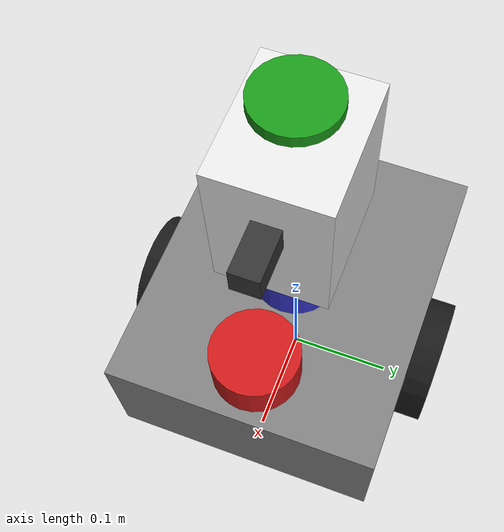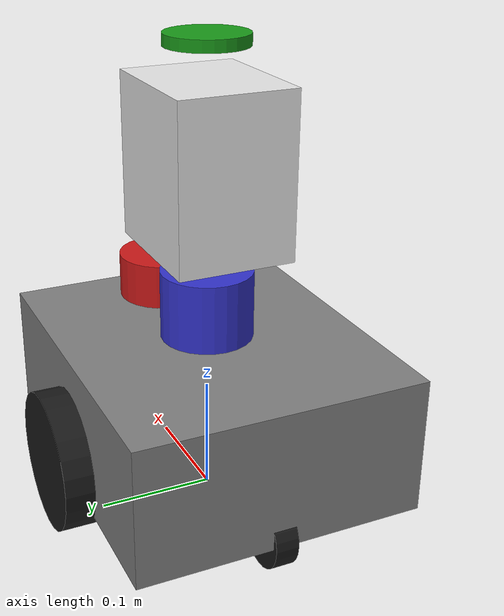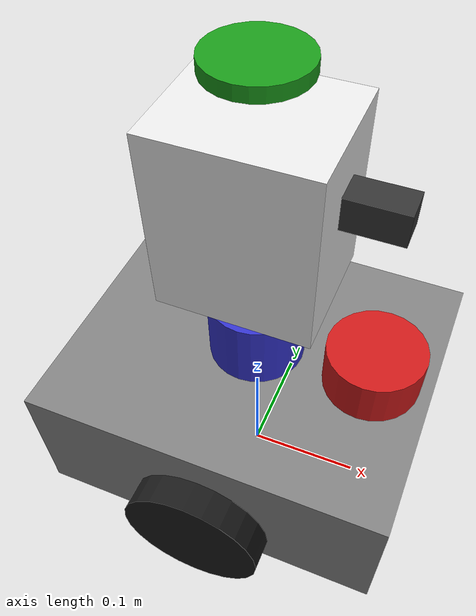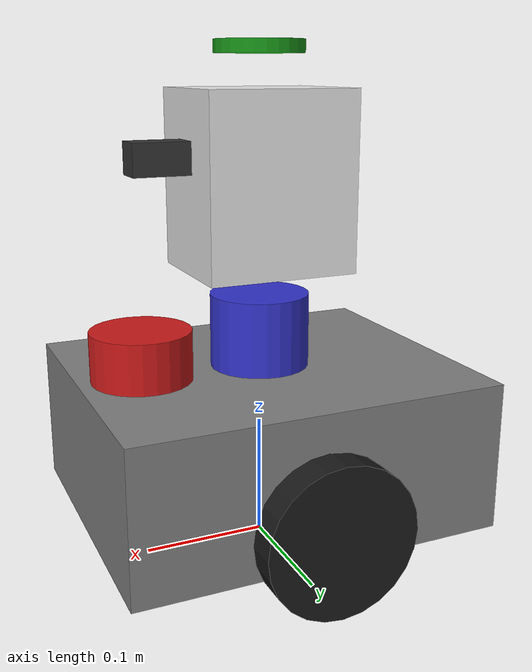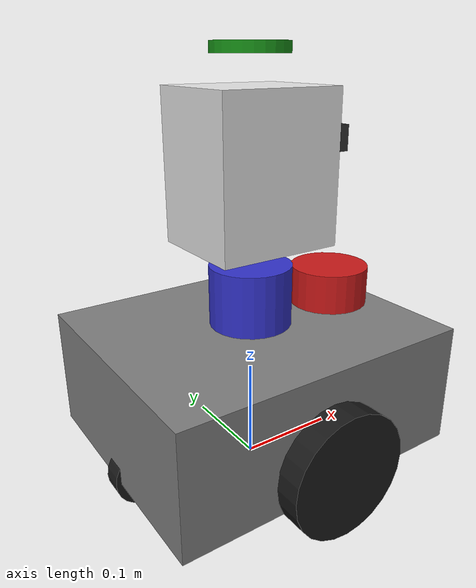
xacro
<?xml version="1.0"?>
<robot xmlns:xacro="http://www.ros.org/wiki/xacro" name="astro">

  <!-- true iken Gazebo eklentileri/sensörleri eklenir -->
  <xacro:arg name="sim_mode" default="false"/>

  <!-- ─────────────────────────── Ölçüler ─────────────────────────── -->
  <xacro:property name="base_length"    value="0.30"/>
  <xacro:property name="base_width"     value="0.25"/>
  <xacro:property name="base_height"    value="0.12"/>

  <xacro:property name="wheel_radius"   value="0.06"/>
  <xacro:property name="wheel_width"    value="0.04"/>
  <xacro:property name="wheel_y_offset" value="0.13"/>
  <xacro:property name="wheel_separation" value="${2 * wheel_y_offset}"/>

  <!-- Zemin açıklığı: gövde alt yüzeyi ile zemin arası -->
  <xacro:property name="ground_clearance" value="0.03"/>
  <xacro:property name="caster_radius"     value="${ground_clearance}"/>
  <xacro:property name="caster_x_offset"   value="0.11"/>

  <!-- Gövde merkezinin base_link'e göre yüksekliği -->
  <xacro:property name="body_z" value="${ground_clearance + base_height/2 - wheel_radius}"/>

  <xacro:property name="head_height" value="0.18"/>

  <!-- ───────────────────── Atalet yardımcıları ───────────────────── -->
  <xacro:macro name="inertial_box" params="mass x y z *origin">
    <inertial>
      <xacro:insert_block name="origin"/>
      <mass value="${mass}"/>
      <inertia ixx="${mass*(y*y+z*z)/12}" ixy="0" ixz="0"
               iyy="${mass*(x*x+z*z)/12}" iyz="0"
               izz="${mass*(x*x+y*y)/12}"/>
    </inertial>
  </xacro:macro>

  <xacro:macro name="inertial_cylinder" params="mass radius length *origin">
    <inertial>
      <xacro:insert_block name="origin"/>
      <mass value="${mass}"/>
      <inertia ixx="${mass*(3*radius*radius+length*length)/12}" ixy="0" ixz="0"
               iyy="${mass*(3*radius*radius+length*length)/12}" iyz="0"
               izz="${mass*radius*radius/2}"/>
    </inertial>
  </xacro:macro>

  <xacro:macro name="inertial_sphere" params="mass radius *origin">
    <inertial>
      <xacro:insert_block name="origin"/>
      <mass value="${mass}"/>
      <inertia ixx="${2*mass*radius*radius/5}" ixy="0" ixz="0"
               iyy="${2*mass*radius*radius/5}" iyz="0"
               izz="${2*mass*radius*radius/5}"/>
    </inertial>
  </xacro:macro>

  <!-- ──────────────────────── Malzemeler ─────────────────────────── -->
  <material name="grey">      <color rgba="0.5 0.5 0.5 1.0"/></material>
  <material name="black">     <color rgba="0.1 0.1 0.1 1.0"/></material>
  <material name="red">       <color rgba="0.8 0.1 0.1 1.0"/></material>
  <material name="blue">      <color rgba="0.2 0.2 0.8 1.0"/></material>
  <material name="white">     <color rgba="0.9 0.9 0.9 1.0"/></material>
  <material name="dark_grey"> <color rgba="0.2 0.2 0.2 1.0"/></material>
  <material name="green">     <color rgba="0.1 0.6 0.1 1.0"/></material>

  <!-- ═══════════════════════ Taban ═══════════════════════ -->
  <link name="base_footprint"/>

  <joint name="base_footprint_joint" type="fixed">
    <parent link="base_footprint"/>
    <child link="base_link"/>
    <origin xyz="0 0 ${wheel_radius}" rpy="0 0 0"/>
  </joint>

  <link name="base_link">
    <visual>
      <origin xyz="0 0 ${body_z}" rpy="0 0 0"/>
      <geometry><box size="${base_length} ${base_width} ${base_height}"/></geometry>
      <material name="grey"/>
    </visual>
    <collision>
      <origin xyz="0 0 ${body_z}" rpy="0 0 0"/>
      <geometry><box size="${base_length} ${base_width} ${base_height}"/></geometry>
    </collision>
    <xacro:inertial_box mass="5.0" x="${base_length}" y="${base_width}" z="${base_height}">
      <origin xyz="0 0 ${body_z}" rpy="0 0 0"/>
    </xacro:inertial_box>
  </link>

  <!-- ═══════════════════ Tahrik tekerlekleri ═══════════════════ -->
  <!-- Eklem z=0: tekerlek merkezi base_footprint'ten wheel_radius yükseklikte,
       yani lastik tam olarak zemine değiyor. -->
  <xacro:macro name="drive_wheel" params="prefix y_sign">
    <link name="${prefix}_wheel_link">
      <visual>
        <geometry><cylinder radius="${wheel_radius}" length="${wheel_width}"/></geometry>
        <material name="black"/>
      </visual>
      <collision>
        <geometry><cylinder radius="${wheel_radius}" length="${wheel_width}"/></geometry>
      </collision>
      <xacro:inertial_cylinder mass="0.5" radius="${wheel_radius}" length="${wheel_width}">
        <origin xyz="0 0 0" rpy="0 0 0"/>
      </xacro:inertial_cylinder>
    </link>

    <joint name="${prefix}_wheel_joint" type="continuous">
      <parent link="base_link"/>
      <child link="${prefix}_wheel_link"/>
      <origin xyz="0 ${y_sign * wheel_y_offset} 0" rpy="${-pi/2} 0 0"/>
      <axis xyz="0 0 1"/>
      <dynamics damping="0.05" friction="0.02"/>
    </joint>
  </xacro:macro>

  <xacro:drive_wheel prefix="left"  y_sign="1"/>
  <xacro:drive_wheel prefix="right" y_sign="-1"/>

  <!-- ═══════════════════ Döner denge tekerlekleri ═══════════════════ -->
  <xacro:property name="caster_trail" value="0.015"/>

  <xacro:macro name="caster" params="prefix x_sign">
    <!-- Döndürme (swivel) mili -->
    <link name="${prefix}_caster_swivel_link">
      <visual>
        <geometry><cylinder radius="0.012" length="0.03"/></geometry>
        <material name="dark_grey"/>
      </visual>
      <xacro:inertial_cylinder mass="0.03" radius="0.012" length="0.03">
        <origin xyz="0 0 0" rpy="0 0 0"/>
      </xacro:inertial_cylinder>
    </link>

    <joint name="${prefix}_caster_swivel_joint" type="continuous">
      <parent link="base_link"/>
      <child link="${prefix}_caster_swivel_link"/>
      <origin xyz="${x_sign * caster_x_offset} 0 ${caster_radius - wheel_radius + 0.02}" rpy="0 0 0"/>
      <axis xyz="0 0 1"/>
      <dynamics damping="0.001" friction="0.0"/>
    </joint>

    <!-- Yuvarlanan tekerlek: milin TRAIL kadar arkasında -->
    <link name="${prefix}_caster_wheel_link">
      <visual>
        <origin xyz="0 0 0" rpy="${pi/2} 0 0"/>
        <geometry><cylinder radius="${caster_radius}" length="0.02"/></geometry>
        <material name="black"/>
      </visual>
      <collision>
        <origin xyz="0 0 0" rpy="${pi/2} 0 0"/>
        <geometry><cylinder radius="${caster_radius}" length="0.02"/></geometry>
      </collision>
      <xacro:inertial_cylinder mass="0.05" radius="${caster_radius}" length="0.02">
        <origin xyz="0 0 0" rpy="${pi/2} 0 0"/>
      </xacro:inertial_cylinder>
    </link>

    <joint name="${prefix}_caster_wheel_joint" type="continuous">
      <parent link="${prefix}_caster_swivel_link"/>
      <child link="${prefix}_caster_wheel_link"/>
      <origin xyz="${-caster_trail} 0 -0.02" rpy="0 0 0"/>
      <axis xyz="0 1 0"/>
      <dynamics damping="0.001" friction="0.0"/>
    </joint>
  </xacro:macro>

  <xacro:caster prefix="front" x_sign="1"/>
  <xacro:caster prefix="rear"  x_sign="-1"/>

  <!-- ═══════════════════════ IMU ═══════════════════════ -->
  <link name="imu_link">
    <xacro:inertial_box mass="0.01" x="0.02" y="0.02" z="0.005">
      <origin xyz="0 0 0" rpy="0 0 0"/>
    </xacro:inertial_box>
  </link>

  <joint name="imu_joint" type="fixed">
    <parent link="base_link"/>
    <child link="imu_link"/>
    <origin xyz="0 0 ${body_z}" rpy="0 0 0"/>
  </joint>

  <!-- ═══════════════════════ LiDAR ═══════════════════════ -->
  <!-- RPLIDAR A1: gövdenin üst yüzeyine, hafif öne monte -->
  <xacro:property name="body_top" value="${body_z + base_height/2}"/>

  <link name="laser_frame">
    <visual>
      <geometry><cylinder radius="0.04" length="0.04"/></geometry>
      <material name="red"/>
    </visual>
    <collision>
      <geometry><cylinder radius="0.04" length="0.04"/></geometry>
    </collision>
    <xacro:inertial_cylinder mass="0.17" radius="0.04" length="0.04">
      <origin xyz="0 0 0" rpy="0 0 0"/>
    </xacro:inertial_cylinder>
  </link>

  <joint name="laser_joint" type="fixed">
    <parent link="base_link"/>
    <child link="laser_frame"/>
    <origin xyz="0.10 0 ${body_top + 0.02}" rpy="0 0 0"/>
  </joint>

  <!-- ═══════════════════════ Kafa ═══════════════════════ -->
  <link name="head_yaw_link">
    <visual>
      <geometry><cylinder radius="0.04" length="0.06"/></geometry>
      <material name="blue"/>
    </visual>
    <collision>
      <geometry><cylinder radius="0.04" length="0.06"/></geometry>
    </collision>
    <xacro:inertial_cylinder mass="0.3" radius="0.04" length="0.06">
      <origin xyz="0 0 0" rpy="0 0 0"/>
    </xacro:inertial_cylinder>
  </link>

  <joint name="head_yaw_joint" type="revolute">
    <parent link="base_link"/>
    <child link="head_yaw_link"/>
    <origin xyz="0 0 ${body_top + 0.03}" rpy="0 0 0"/>
    <axis xyz="0 0 1"/>
    <limit lower="${-pi/2}" upper="${pi/2}" effort="1.0" velocity="1.0"/>
    <dynamics damping="0.1" friction="0.05"/>
  </joint>

  <link name="head_link">
    <visual>
      <geometry><box size="0.12 0.10 0.14"/></geometry>
      <material name="white"/>
    </visual>
    <collision>
      <geometry><box size="0.12 0.10 0.14"/></geometry>
    </collision>
    <xacro:inertial_box mass="0.5" x="0.12" y="0.10" z="0.14">
      <origin xyz="0 0 0" rpy="0 0 0"/>
    </xacro:inertial_box>
  </link>

  <joint name="head_pitch_joint" type="fixed">
    <parent link="head_yaw_link"/>
    <child link="head_link"/>
    <origin xyz="0 0 ${head_height/2 + 0.03}" rpy="0 0 0"/>
  </joint>

  <!-- ═══════════════════ OAK-D Lite kamera ═══════════════════ -->
  <link name="oak_link">
    <visual>
      <geometry><box size="0.09 0.025 0.025"/></geometry>
      <material name="dark_grey"/>
    </visual>
    <collision>
      <geometry><box size="0.09 0.025 0.025"/></geometry>
    </collision>
    <xacro:inertial_box mass="0.06" x="0.09" y="0.025" z="0.025">
      <origin xyz="0 0 0" rpy="0 0 0"/>
    </xacro:inertial_box>
  </link>

  <joint name="oak_joint" type="fixed">
    <parent link="head_link"/>
    <child link="oak_link"/>
    <origin xyz="0.06 0 0.02" rpy="0 0 0"/>
  </joint>

  <!-- Optik çerçeve: REP-103 (z ileri, x sağ, y aşağı) -->
  <link name="oak_rgb_camera_optical_frame"/>

  <joint name="oak_rgb_optical_joint" type="fixed">
    <parent link="oak_link"/>
    <child link="oak_rgb_camera_optical_frame"/>
    <origin xyz="0 0 0" rpy="${-pi/2} 0 ${-pi/2}"/>
  </joint>

  <!-- ═══════════════ ReSpeaker mikrofon dizisi ═══════════════ -->
  <link name="mic_link">
    <visual>
      <geometry><cylinder radius="0.035" length="0.01"/></geometry>
      <material name="green"/>
    </visual>
    <collision>
      <geometry><cylinder radius="0.035" length="0.01"/></geometry>
    </collision>
    <xacro:inertial_cylinder mass="0.05" radius="0.035" length="0.01">
      <origin xyz="0 0 0" rpy="0 0 0"/>
    </xacro:inertial_cylinder>
  </link>

  <joint name="mic_joint" type="fixed">
    <parent link="head_link"/>
    <child link="mic_link"/>
    <origin xyz="0 0 ${head_height/2 + 0.01}" rpy="0 0 0"/>
  </joint>

  <!-- ═══════════════ Simülasyon eklentileri ═══════════════ -->
  <xacro:if value="$(arg sim_mode)">
    <xacro:include filename="$(find astro_description)/urdf/astro_gazebo.xacro"/>
  </xacro:if>

</robot>
